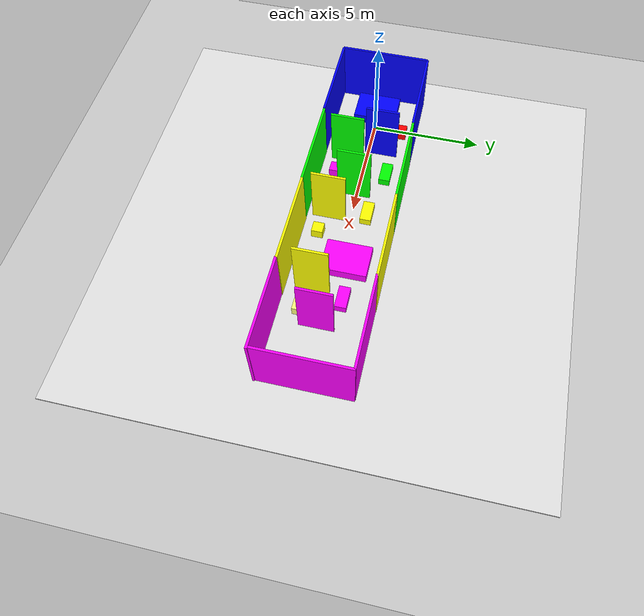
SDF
<sdf version="1.7">
 <world name="house_4_rooms">
  <model name="ground_plane">
   <static>1</static>
   <link name="link">
    <collision name="collision">
     <geometry><plane><normal>0 0 1</normal><size>100 100</size></plane></geometry>
     <surface><friction><ode><mu>100</mu><mu2>50</mu2></ode></friction></surface>
    </collision>
    <visual name="visual">
     <cast_shadows>0</cast_shadows>
     <geometry><plane><normal>0 0 1</normal><size>100 100</size></plane></geometry>
     <material>
      <script><uri>file://media/materials/scripts/gazebo.material</uri><name>Gazebo/Grey</name></script>
     </material>
    </visual>
   </link>
  </model>
  <model name="house_floor">
   <static>1</static>
   <link name="link">
    <collision name="collision"><geometry><box><size>20 20 0.1</size></box></geometry></collision>
    <visual name="visual">
     <geometry><box><size>20 20 0.1</size></box></geometry>
     <material><ambient>0.9 0.9 0.9 1</ambient><diffuse>0.9 0.9 0.9 1</diffuse></material>
    </visual>
   </link>
   <pose>6.5 0 0 0 -0 0</pose>
  </model>
  <model name="room1_wall1">
   <static>1</static>
   <link name="link">
    <collision name="collision_wall1"><geometry><box><size>4 0.1 3</size></box></geometry></collision>
    <visual name="visual_wall1">
     <geometry><box><size>4 0.1 3</size></box></geometry>
     <material><ambient>0 0 1 1</ambient></material>
    </visual>
   </link>
   <pose>0 2 1.5 0 -0 0</pose>
  </model>
  <model name="room1_wall2">
   <static>1</static>
   <link name="link">
    <collision name="collision_wall2"><geometry><box><size>4 0.1 3</size></box></geometry></collision>
    <visual name="visual_wall2">
     <geometry><box><size>4 0.1 3</size></box></geometry>
     <material><ambient>0 0 1 1</ambient></material>
    </visual>
   </link>
   <pose>0 -2 1.5 0 -0 0</pose>
  </model>
  <model name="room1_wall3">
   <static>1</static>
   <link name="link">
    <collision name="collision_wall3"><geometry><box><size>0.1 4 3</size></box></geometry></collision>
    <visual name="visual_wall3">
     <geometry><box><size>0.1 4 3</size></box></geometry>
     <material><ambient>0 0 1 1</ambient></material>
    </visual>
   </link>
   <pose>-2 0 1.5 0 -0 0</pose>
  </model>
  <model name="room1_wall4_with_door">
   <static>1</static>
   <link name="link">
    <collision name="wall_left"><geometry><box><size>0.1 1.5 3</size></box></geometry></collision>
    <collision name="wall_right"><geometry><box><size>0.1 1.5 3</size></box></geometry></collision>
    <visual name="wall_left_visual">
     <geometry><box><size>0.1 1.5 3</size></box></geometry>
     <material><ambient>0 0 1 1</ambient></material>
    </visual>
    <visual name="wall_right_visual">
     <geometry><box><size>0.1 1.5 3</size></box></geometry>
     <material><ambient>0 0 1 1</ambient></material>
    </visual>
   </link>
   <pose>1.58618 0.586973 1.5 0 -0 0</pose>
  </model>
  <model name="room1_bed">
   <static>1</static>
   <link name="link">
    <collision name="collision_bed"><geometry><box><size>1.5 2 0.5</size></box></geometry></collision>
    <visual name="visual_bed">
     <geometry><box><size>1.5 2 0.5</size></box></geometry>
     <material><ambient>0 0 1 1</ambient></material>
    </visual>
   </link>
   <pose>-0.952847 -0.09372 0.25 0 -0 0</pose>
  </model>
  <model name="room1_table">
   <static>1</static>
   <link name="link">
    <collision name="collision_table"><geometry><box><size>1 0.5 0.4</size></box></geometry></collision>
    <visual name="visual_table">
     <geometry><box><size>1 0.5 0.4</size></box></geometry>
     <material><ambient>0 0 1 1</ambient></material>
    </visual>
   </link>
   <pose>0.773278 -1.01452 0.2 0 -0 0</pose>
  </model>
  <model name="room1_chair">
   <static>1</static>
   <link name="link">
    <collision name="collision_chair"><geometry><box><size>0.5 0.5 0.5</size></box></geometry></collision>
    <visual name="visual_chair">
     <geometry><box><size>0.5 0.5 0.5</size></box></geometry>
     <material><ambient>1 0 0 1</ambient></material>
    </visual>
   </link>
   <pose>0.2346 1.31262 0.25 0 -0 0</pose>
  </model>
  <model name="room2_wall1">
   <static>1</static>
   <link name="link">
    <collision name="collision_wall1"><geometry><box><size>4 0.1 3</size></box></geometry></collision>
    <visual name="visual_wall1">
     <geometry><box><size>4 0.1 3</size></box></geometry>
     <material><ambient>0 1 0 1</ambient></material>
    </visual>
   </link>
   <pose>3.98312 2.00831 1.5 0 -0 0</pose>
  </model>
  <model name="room2_wall2">
   <static>1</static>
   <link name="link">
    <collision name="collision_wall2"><geometry><box><size>4 0.1 3</size></box></geometry></collision>
    <visual name="visual_wall2">
     <geometry><box><size>4 0.1 3</size></box></geometry>
     <material><ambient>0 1 0 1</ambient></material>
    </visual>
   </link>
   <pose>4.02261 -1.99039 1.5 0 -0 0</pose>
  </model>
  <model name="room2_wall3_with_door">
   <static>1</static>
   <link name="link">
    <collision name="wall_left"><geometry><box><size>0.1 1.5 3</size></box></geometry></collision>
    <collision name="wall_right"><geometry><box><size>0.1 1.5 3</size></box></geometry></collision>
    <visual name="wall_left_visual">
     <geometry><box><size>0.1 1.5 3</size></box></geometry>
     <material><ambient>0 1 0 1</ambient></material>
    </visual>
    <visual name="wall_right_visual">
     <geometry><box><size>0.1 1.5 3</size></box></geometry>
     <material><ambient>0 1 0 1</ambient></material>
    </visual>
   </link>
   <pose>2.28089 -0.861896 1.5 0 -0 0</pose>
  </model>
  <model name="room2_wall4_with_door">
   <static>1</static>
   <link name="link">
    <collision name="wall_left"><geometry><box><size>0.1 1.5 3</size></box></geometry></collision>
    <collision name="wall_right"><geometry><box><size>0.1 1.5 3</size></box></geometry></collision>
    <visual name="wall_left_visual">
     <geometry><box><size>0.1 1.5 3</size></box></geometry>
     <material><ambient>0 1 0 1</ambient></material>
    </visual>
    <visual name="wall_right_visual">
     <geometry><box><size>0.1 1.5 3</size></box></geometry>
     <material><ambient>0 1 0 1</ambient></material>
    </visual>
   </link>
   <pose>4.21934 -0.146689 1.5 0 -0 0</pose>
  </model>
  <model name="room2_table">
   <static>1</static>
   <link name="link">
    <collision name="collision_table"><geometry><box><size>1 0.5 0.4</size></box></geometry></collision>
    <visual name="visual_table">
     <geometry><box><size>1 0.5 0.4</size></box></geometry>
     <material><ambient>0 1 0 1</ambient></material>
    </visual>
   </link>
   <pose>2.88875 1.08287 0.2 0 -0 0</pose>
  </model>
  <model name="room2_chair">
   <static>1</static>
   <link name="link">
    <collision name="collision_chair"><geometry><box><size>0.5 0.5 0.5</size></box></geometry></collision>
    <visual name="visual_chair">
     <geometry><box><size>0.5 0.5 0.5</size></box></geometry>
     <material><ambient>1 0 1 1</ambient></material>
    </visual>
   </link>
   <pose>3.15574 -1.23944 0.25 0 -0 0</pose>
  </model>
  <model name="room3_wall1">
   <static>1</static>
   <link name="link">
    <collision name="collision_wall1"><geometry><box><size>4 0.1 3</size></box></geometry></collision>
    <visual name="visual_wall1">
     <geometry><box><size>4 0.1 3</size></box></geometry>
     <material><ambient>1 1 0 1</ambient></material>
    </visual>
   </link>
   <pose>7.97041 2.00398 1.5 0 -0 0</pose>
  </model>
  <model name="room3_wall2">
   <static>1</static>
   <link name="link">
    <collision name="collision_wall2"><geometry><box><size>4 0.1 3</size></box></geometry></collision>
    <visual name="visual_wall2">
     <geometry><box><size>4 0.1 3</size></box></geometry>
     <material><ambient>1 1 0 1</ambient></material>
    </visual>
   </link>
   <pose>8.00367 -1.97904 1.5 0 -0 0</pose>
  </model>
  <model name="room3_wall3_with_door">
   <static>1</static>
   <link name="link">
    <collision name="wall_left"><geometry><box><size>0.1 1.5 3</size></box></geometry></collision>
    <collision name="wall_right"><geometry><box><size>0.1 1.5 3</size></box></geometry></collision>
    <visual name="wall_left_visual">
     <geometry><box><size>0.1 1.5 3</size></box></geometry>
     <material><ambient>1 1 0 1</ambient></material>
    </visual>
    <visual name="wall_right_visual">
     <geometry><box><size>0.1 1.5 3</size></box></geometry>
     <material><ambient>1 1 0 1</ambient></material>
    </visual>
   </link>
   <pose>5.68781 -0.93752 1.5 0 -0 0</pose>
  </model>
  <model name="room3_wall4_with_door">
   <static>1</static>
   <link name="link">
    <collision name="wall_left"><geometry><box><size>0.1 1.5 3</size></box></geometry></collision>
    <collision name="wall_right"><geometry><box><size>0.1 1.5 3</size></box></geometry></collision>
    <visual name="wall_left_visual">
     <geometry><box><size>0.1 1.5 3</size></box></geometry>
     <material><ambient>1 1 0 1</ambient></material>
    </visual>
    <visual name="wall_right_visual">
     <geometry><box><size>0.1 1.5 3</size></box></geometry>
     <material><ambient>1 1 0 1</ambient></material>
    </visual>
   </link>
   <pose>9.45934 -0.773847 1.5 0 -0 0</pose>
  </model>
  <model name="room3_table">
   <static>1</static>
   <link name="link">
    <collision name="collision_table"><geometry><box><size>1 0.5 0.4</size></box></geometry></collision>
    <visual name="visual_table">
     <geometry><box><size>1 0.5 0.4</size></box></geometry>
     <material><ambient>1 1 0 1</ambient></material>
    </visual>
   </link>
   <pose>5.24623 0.690233 0.2 0 -0 0</pose>
  </model>
  <model name="room3_chair">
   <static>1</static>
   <link name="link">
    <collision name="collision_chair"><geometry><box><size>0.5 0.5 0.5</size></box></geometry></collision>
    <visual name="visual_chair">
     <geometry><box><size>0.5 0.5 0.5</size></box></geometry>
     <material><ambient>1 1 0 1</ambient></material>
    </visual>
   </link>
   <pose>6.63085 -1.22218 0.25 0 -0 0</pose>
  </model>
  <model name="room4_wall1">
   <static>1</static>
   <link name="link">
    <collision name="collision_wall1"><geometry><box><size>4 0.1 3</size></box></geometry></collision>
    <visual name="visual_wall1">
     <geometry><box><size>4 0.1 3</size></box></geometry>
     <material><ambient>1 0 1 1</ambient></material>
    </visual>
   </link>
   <pose>11.878 1.99067 1.5 0 -0 0</pose>
  </model>
  <model name="room4_wall2">
   <static>1</static>
   <link name="link">
    <collision name="collision_wall2"><geometry><box><size>4 0.1 3</size></box></geometry></collision>
    <visual name="visual_wall2">
     <geometry><box><size>4 0.1 3</size></box></geometry>
     <material><ambient>1 0 1 1</ambient></material>
    </visual>
   </link>
   <pose>11.9613 -2.00039 1.5 0 -0 0</pose>
  </model>
  <model name="room4_wall3_with_door">
   <static>1</static>
   <link name="link">
    <collision name="wall_left"><geometry><box><size>0.1 1.5 3</size></box></geometry></collision>
    <visual name="wall_left_visual">
     <geometry><box><size>0.1 1.5 3</size></box></geometry>
     <material><ambient>1 0 1 1</ambient></material>
    </visual>
    <collision name="wall_right"><geometry><box><size>0.1 1.5 3</size></box></geometry></collision>
    <visual name="wall_right_visual">
     <geometry><box><size>0.1 1.5 3</size></box></geometry>
     <material><ambient>1 0 1 1</ambient></material>
    </visual>
   </link>
   <pose>11.163 -0.18178 1.5 0 -0 0</pose>
  </model>
  <model name="room4_wall4">
   <static>1</static>
   <link name="link">
    <collision name="collision_wall4"><geometry><box><size>0.1 4 3</size></box></geometry></collision>
    <visual name="visual_wall4">
     <geometry><box><size>0.1 4 3</size></box></geometry>
     <material><ambient>1 0 1 1</ambient></material>
    </visual>
   </link>
   <pose>13.879 0.028376 1.5 0 -0 0</pose>
  </model>
  <model name="room4_bed">
   <static>1</static>
   <link name="link">
    <collision name="collision_bed"><geometry><box><size>1.5 2 0.5</size></box></geometry></collision>
    <visual name="visual_bed">
     <geometry><box><size>1.5 2 0.5</size></box></geometry>
     <material><ambient>1 0 1 1</ambient></material>
    </visual>
   </link>
   <pose>7.90181 0.347201 0.25 0 -0 0</pose>
  </model>
  <model name="room4_table">
   <static>1</static>
   <link name="link">
    <collision name="collision_table"><geometry><box><size>1 0.5 0.4</size></box></geometry></collision>
    <visual name="visual_table">
     <geometry><box><size>1 0.5 0.4</size></box></geometry>
     <material><ambient>1 0 1 1</ambient></material>
    </visual>
   </link>
   <pose>9.74578 0.595285 0.2 0 -0 0</pose>
  </model>
  <model name="room4_chair">
   <static>1</static>
   <link name="link">
    <collision name="collision_chair"><geometry><box><size>0.5 0.5 0.5</size></box></geometry></collision>
    <visual name="visual_chair">
     <geometry><box><size>0.5 0.5 0.5</size></box></geometry>
     <material><ambient>1 1 0.5 1</ambient></material>
    </visual>
   </link>
   <pose>10.5335 -1.06661 0.25 0 -0 0</pose>
  </model>
  <gravity>0 0 -9.8</gravity>
  <magnetic_field>6e-06 2.3e-05 -4.2e-05</magnetic_field>
  <atmosphere type="adiabatic"/>
  <physics type="ode">
   <max_step_size>0.001</max_step_size>
   <real_time_factor>1</real_time_factor>
   <real_time_update_rate>1000</real_time_update_rate>
  </physics>
  <scene><ambient>0.4 0.4 0.4 1</ambient><background>0.7 0.7 0.7 1</background><shadows>1</shadows></scene>
  <audio><device>default</device></audio>
  <spherical_coordinates>
   <surface_model>EARTH_WGS84</surface_model>
   <latitude_deg>0</latitude_deg>
   <longitude_deg>0</longitude_deg>
   <elevation>0</elevation>
   <heading_deg>0</heading_deg>
  </spherical_coordinates>
 </world>
</sdf>
